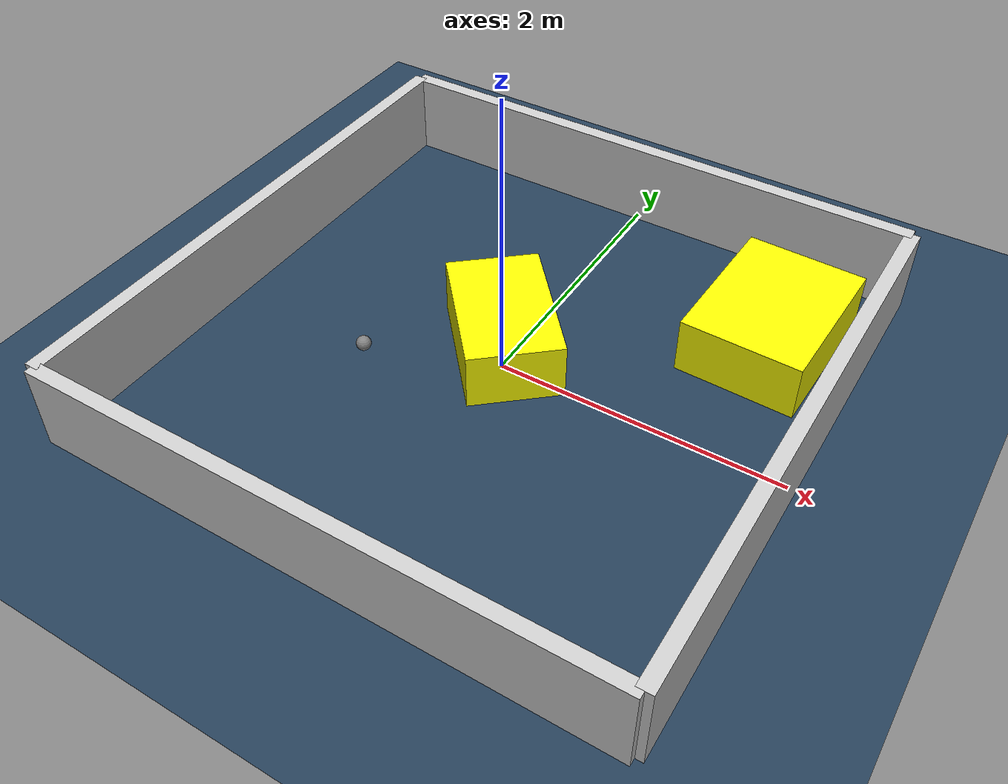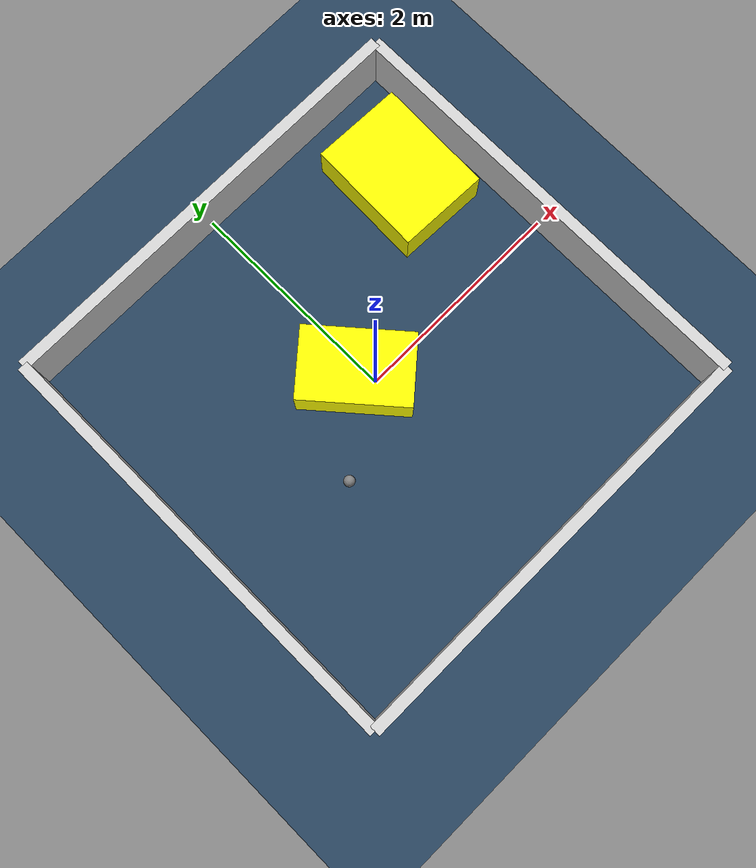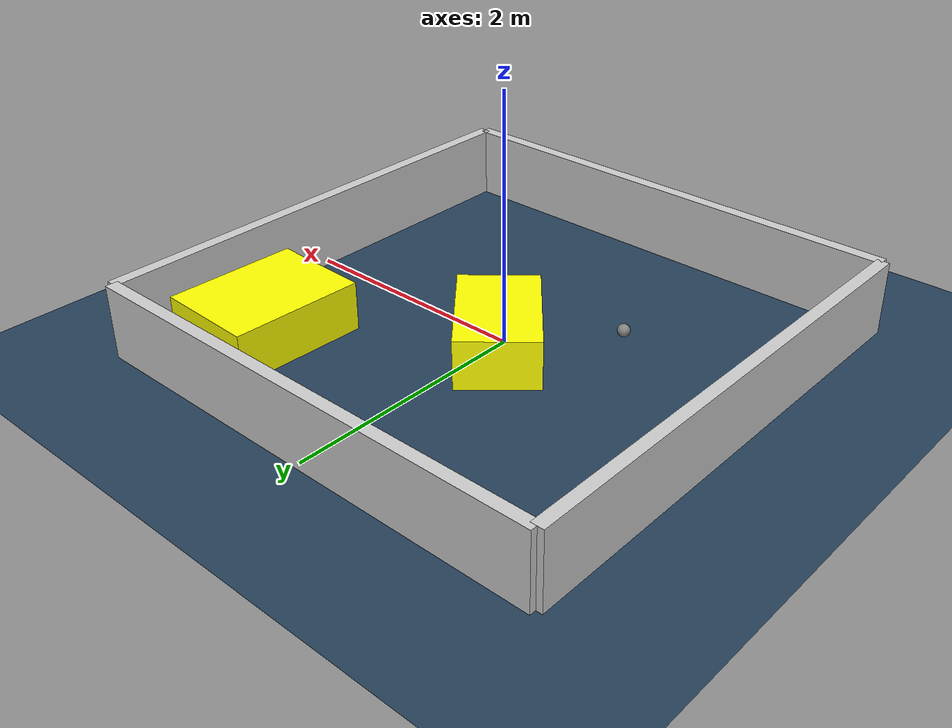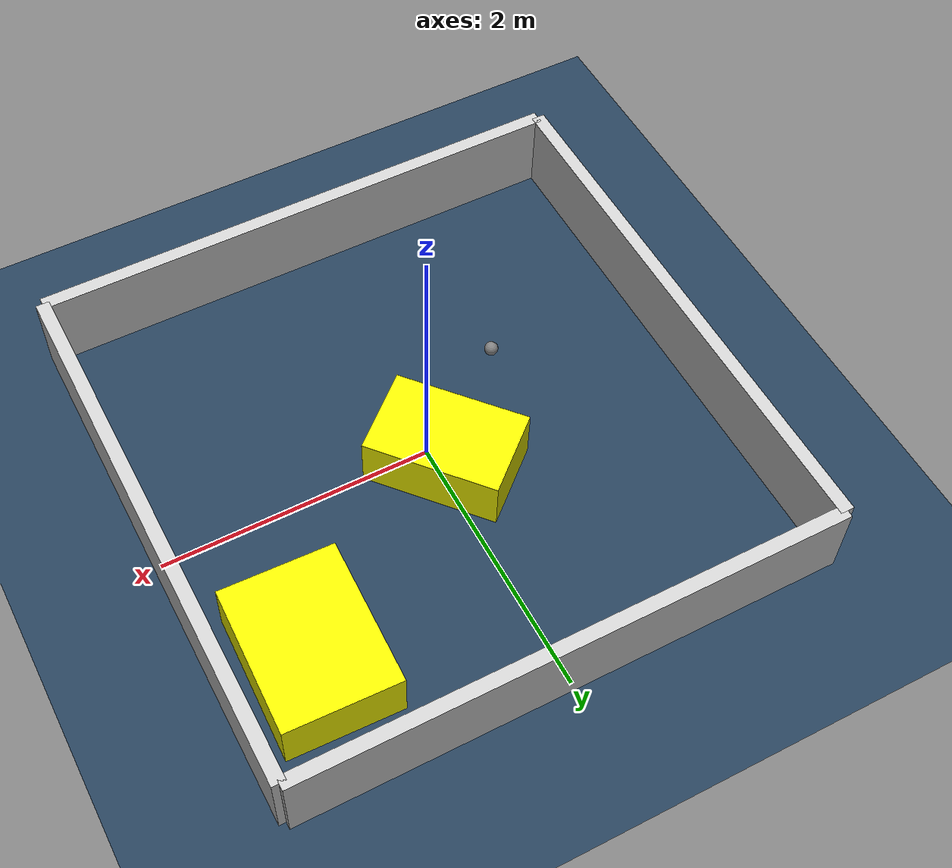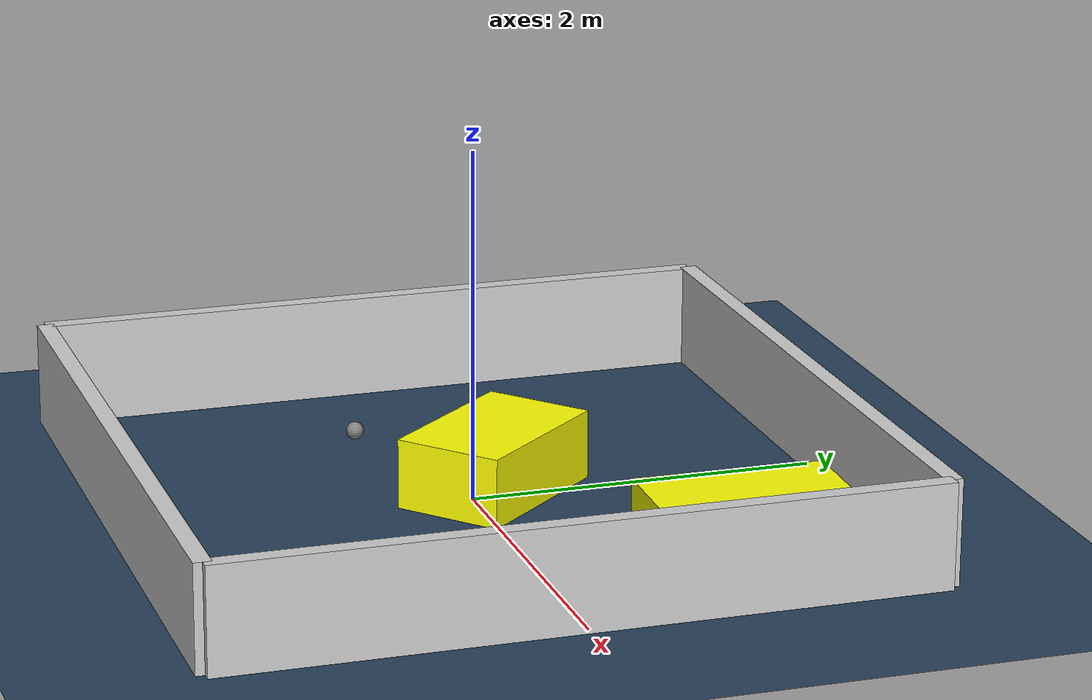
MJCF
<?xml version="1.0" ?>
<mujoco model="generated_environment">
  <option timestep="0.01" integrator="RK4" cone="elliptic"/>
  <default>
    <geom density="1"/>
  </default>
  <asset>
    <texture builtin="gradient" height="3072" rgb1="0.3 0.5 0.7" rgb2="0 0 0" type="skybox" width="512"/>
    <texture builtin="checker" height="300" mark="edge" markrgb="0.8 0.8 0.8" name="groundplane" rgb1="0.2 0.3 0.4" rgb2="0.1 0.2 0.3" type="2d" width="300"/>
    <material name="groundplane" reflectance="0.2" texrepeat="5 5" texture="groundplane" texuniform="true"/>
    <material name="robot" rgba="0.0 1.0 0.0 1"/>
  </asset>
  <worldbody>
    <light dir="0 0 -1" directional="true" pos="0 0 1.5"/>
    <geom condim="4" friction="1.0 0.005 0.001" material="groundplane" name="floor" size="0 0 0.05" type="plane"/>
    <body name="walls">
      <geom name="wall_1" condim="4" pos="-2.0 0.0 0.3" rgba="0.800000011920929 0.800000011920929 0.800000011920929 1.0" size="0.05 2.0 0.3" type="box"/>
      <geom name="wall_2" condim="4" pos="2.0 0.0 0.3" rgba="0.800000011920929 0.800000011920929 0.800000011920929 1.0" size="0.05 2.0 0.3" type="box"/>
      <geom name="wall_3" condim="4" pos="0.0 -2.0 0.3" rgba="0.800000011920929 0.800000011920929 0.800000011920929 1.0" size="2.0 0.05 0.3" type="box"/>
      <geom name="wall_4" condim="4" pos="0.0 2.0 0.3" rgba="0.800000011920929 0.800000011920929 0.800000011920929 1.0" size="2.0 0.05 0.3" type="box"/>
    </body>
    <body name="robot">
      <joint name="joint_x" type="slide" pos="0 0 0" axis="1 0 0"/>
      <joint name="joint_y" type="slide" pos="0 0 0" axis="0 1 0"/>
      <geom name="robot" type="sphere" pos="-0.763971760290868 -0.46685900944459546 0.2" size="0.05" mass="5." friction="1.0 0.005 0.0001" condim="4"/>
      <site name="sensor_ball"/>
    </body>
    <body name="obstacle_1_movable">
      <geom name="obstacle_1_movable" condim="4" pos="-0.07277198862250223 0.1463426500024101 0.2" euler="0 0 131.03402036638727" friction="1.0 0.005 0.001" rgba="1 1 0 1" size="0.49051441328243317 0.31987218010834134 0.2" type="box" mass="0.1"/>
      <joint type="free"/>
    </body>
    <body name="obstacle_2_movable">
      <geom name="obstacle_2_movable" condim="4" pos="1.4084891438859974 1.115993532692976 0.2" euler="0 0 178.15055579703227" friction="1.0 0.005 0.001" rgba="1 1 0 1" size="0.41549726537244225 0.5412358799658983 0.2" type="box" mass="0.1"/>
      <joint type="free"/>
    </body>
  </worldbody>
  <actuator>
    <motor name="actuator_x" joint="joint_x" gear="1" ctrlrange="-1 1"/>
    <motor name="actuator_y" joint="joint_y" gear="1" ctrlrange="-1 1"/>
  </actuator>
</mujoco>
